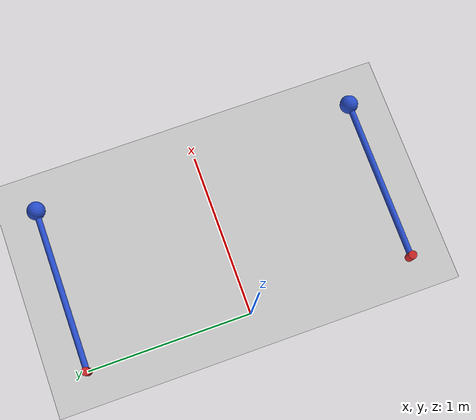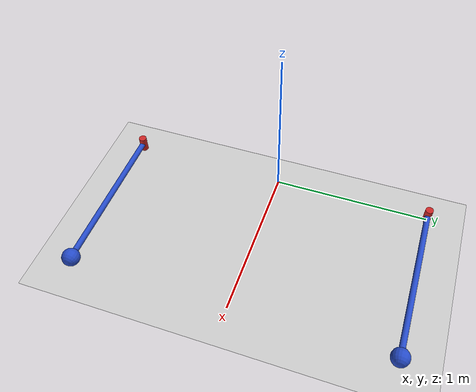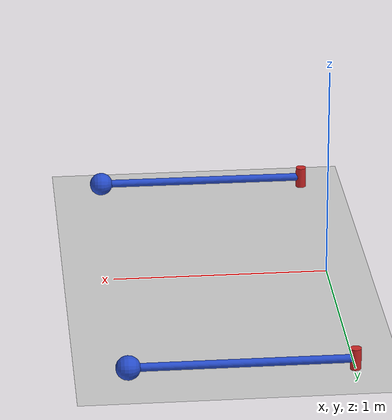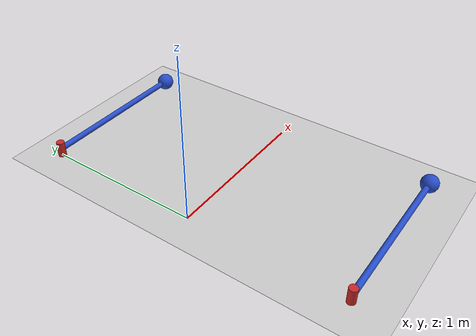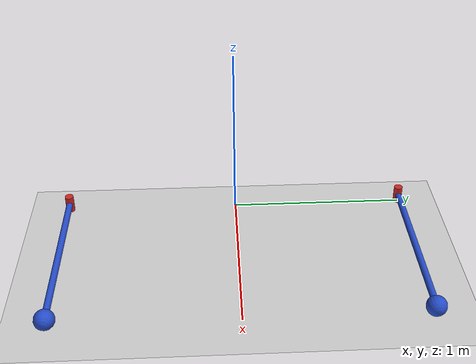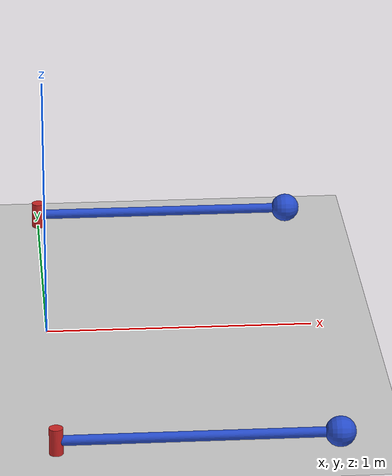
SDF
<?xml version="1.0" ?>
<sdf version="1.6">
<world name="default">
  <include>
    <uri>model://ground_plane</uri>
  </include>
  <include>
    <uri>model://sun</uri>
  </include>

  <!-- Model in which no custom actuation is specified -->
  <model name="no_actuator_model">
    <pose>0 -1.0 0.05 1.5707963268 0 -1.5707963268</pose>
    <link name="pendulum">
      <pose>0.0 0.0 0.0 0 0.0 0.0</pose>
      <inertial>
        <mass>1.0</mass>
        <pose>0 0 -1.0 0 0 0</pose>
        <inertia>
          <ixx>0.001</ixx>
          <ixy>0</ixy>
          <ixz>0</ixz>
          <iyy>0.001</iyy>
          <iyz>0</iyz>
          <izz>0.001</izz>
        </inertia>
      </inertial>
      <visual name="joint_axis">
        <pose>0.0 0.0 0.0 1.5707963268 0.0 0.0</pose>
        <geometry>
          <cylinder>
            <radius>0.025</radius>
            <length>0.1</length>
          </cylinder>
        </geometry>
        <material>
          <script>
            <uri>file://media/materials/scripts/gazebo.material</uri>
            <name>Gazebo/Red</name>
          </script>
        </material>
      </visual>
      <visual name="rod">
        <pose>0 0 -0.5 0.0 0.0 0.0</pose>
        <geometry>
          <cylinder>
            <radius>0.0185185185185</radius>
            <length>1</length>
          </cylinder>
        </geometry>
        <material>
          <script>
            <uri>file://media/materials/scripts/gazebo.material</uri>
            <name>Gazebo/Blue</name>
          </script>
        </material>
      </visual>
      <visual name="point_mass">
        <pose>0 0 -1.0 0 0 0</pose>
        <geometry>
          <sphere>
            <radius>0.055555555555555</radius>
          </sphere>
        </geometry>
        <material>
          <script>
            <uri>file://media/materials/scripts/gazebo.material</uri>
            <name>Gazebo/Blue</name>
          </script>
        </material>
      </visual>
    </link>
    <joint name="joint" type="revolute">
      <parent>world</parent>
      <child>pendulum</child>
      <axis>
        <xyz>0.0 1.0 0.0</xyz>
        <dynamics>
          <damping>0.1</damping>
          <friction>0</friction>
          <spring_reference>0</spring_reference>
          <spring_stiffness>0</spring_stiffness>
        </dynamics>
      </axis>
    </joint>
  </model>

  <!-- Model in which a custom electrical actuator models is specified via gazebo-fmi  -->
  <model name="simple_electrical_actuator_model">
    <pose>0 1.0 0.05 1.5707963268 0 -1.5707963268</pose>
    <link name="pendulum">
      <pose>0.0 0.0 0.0 0.0 0.0 0.0</pose>
      <inertial>
        <mass>1.0</mass>
        <pose>0 0 -1.0 0 0 0</pose>
        <inertia>
          <ixx>0.001</ixx>
          <ixy>0</ixy>
          <ixz>0</ixz>
          <iyy>0.001</iyy>
          <iyz>0</iyz>
          <izz>0.001</izz>
        </inertia>
      </inertial>
      <visual name="joint_axis">
        <pose>0.0 0.0 0.0 1.5707963268 0.0 0.0</pose>
        <geometry>
          <cylinder>
            <radius>0.025</radius>
            <length>0.1</length>
          </cylinder>
        </geometry>
        <material>
          <script>
            <uri>file://media/materials/scripts/gazebo.material</uri>
            <name>Gazebo/Red</name>
          </script>
        </material>
      </visual>
      <visual name="rod">
        <pose>0 0 -0.5 0.0 0.0 0.0</pose>
        <geometry>
          <cylinder>
            <radius>0.0185185185185</radius>
            <length>1</length>
          </cylinder>
        </geometry>
        <material>
          <script>
            <uri>file://media/materials/scripts/gazebo.material</uri>
            <name>Gazebo/Blue</name>
          </script>
        </material>
      </visual>
      <visual name="point_mass">
        <pose>0 0 -1.0 0 0 0</pose>
        <geometry>
          <sphere>
            <radius>0.055555555555555</radius>
          </sphere>
        </geometry>
        <material>
          <script>
            <uri>file://media/materials/scripts/gazebo.material</uri>
            <name>Gazebo/Blue</name>
          </script>
        </material>
      </visual>
    </link>
    <joint name="joint" type="revolute">
      <parent>world</parent>
      <child>pendulum</child>
      <axis>
        <xyz>0.0 1.0 0.0</xyz>
        <dynamics>
          <damping>0.1</damping>
          <friction>0.0</friction>
          <spring_reference>0</spring_reference>
          <spring_stiffness>0</spring_stiffness>
        </dynamics>
      </axis>
    </joint>
    <!-- fmi actuator plugin -->
    <plugin name="simple_electrical_actuator" filename="libFMIActuatorPlugin.so">
       <actuator>
         <name>joint_actuator</name>
         <joint>joint</joint>
         <fmu>SimpleElectricalActuator.fmu</fmu>
       </actuator>
    </plugin>
  </model>
</world>
</sdf>
